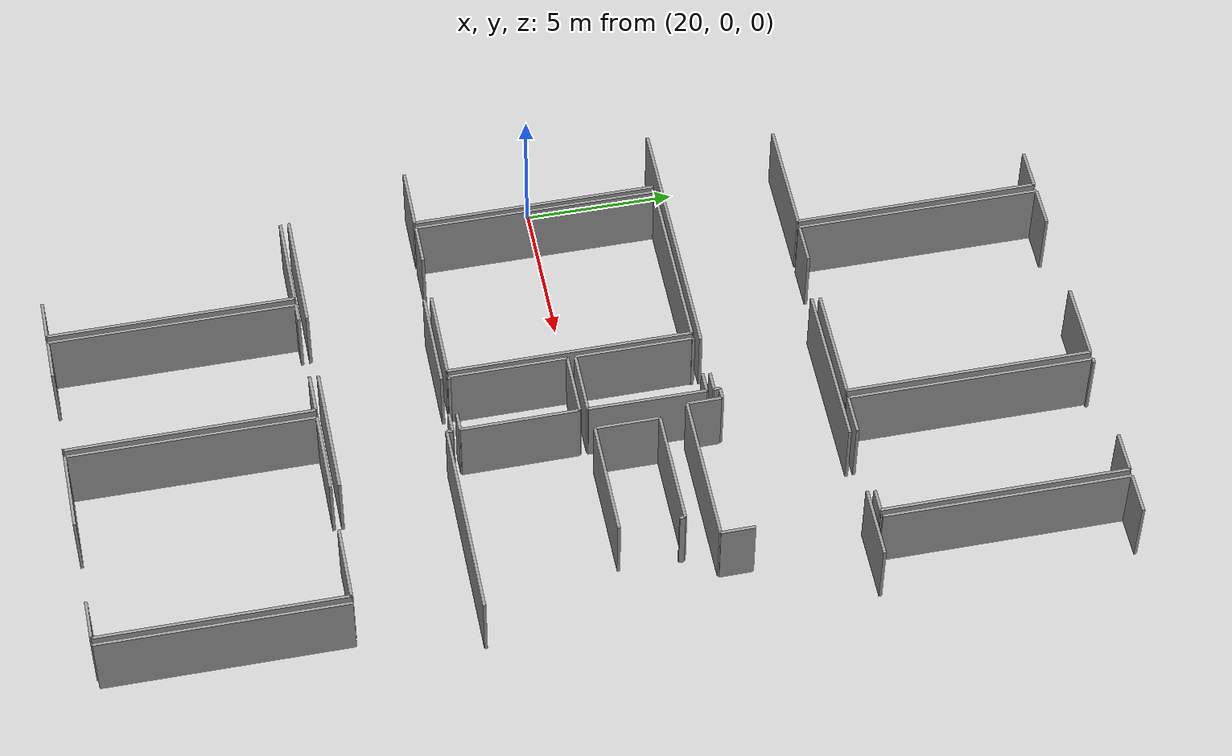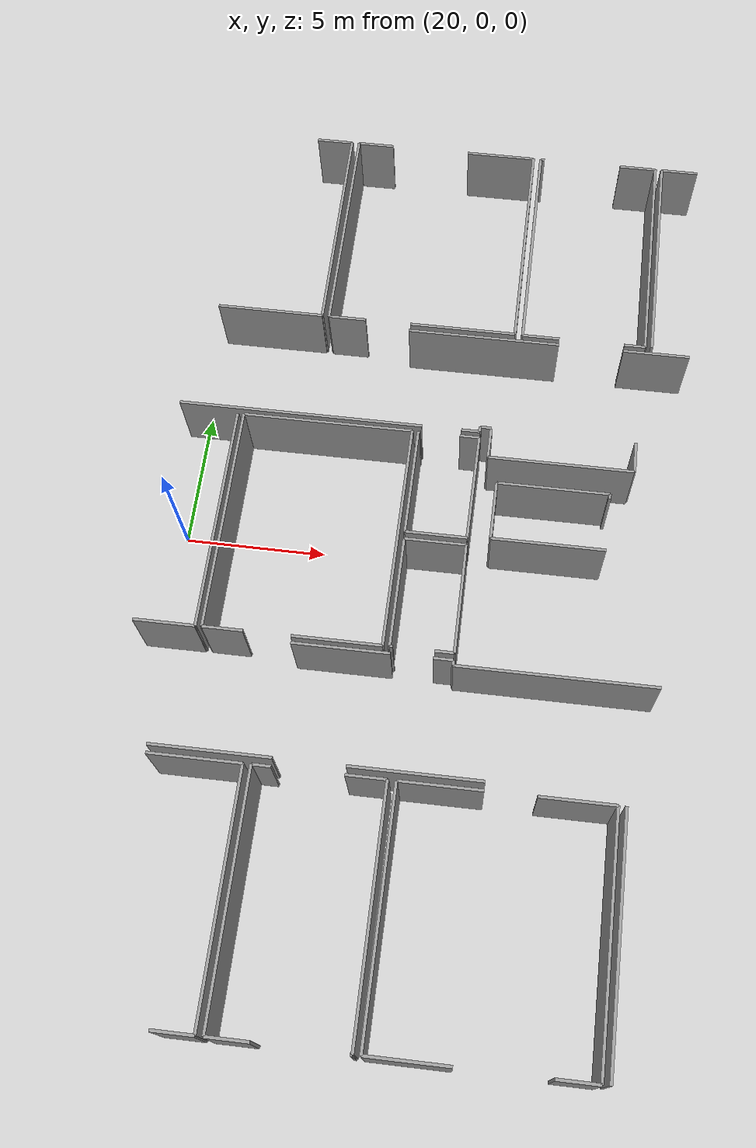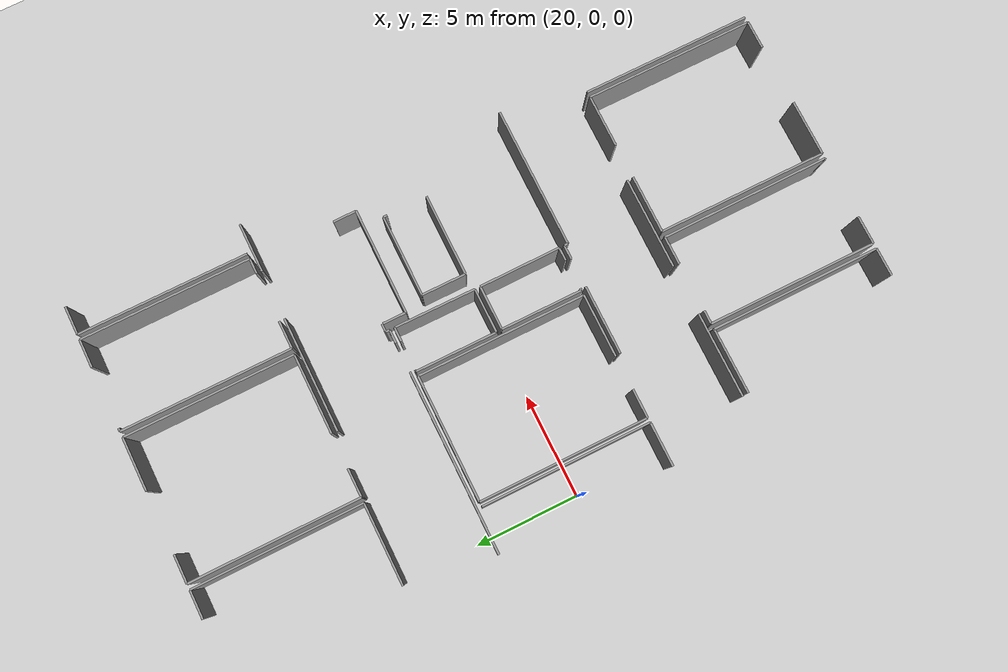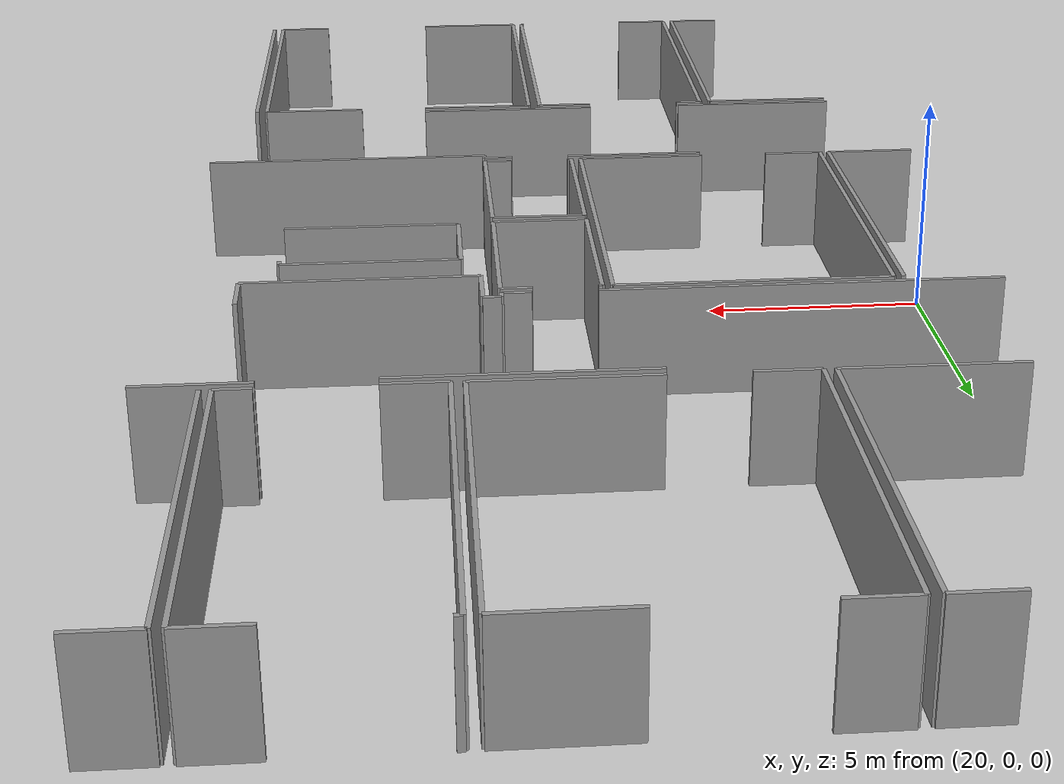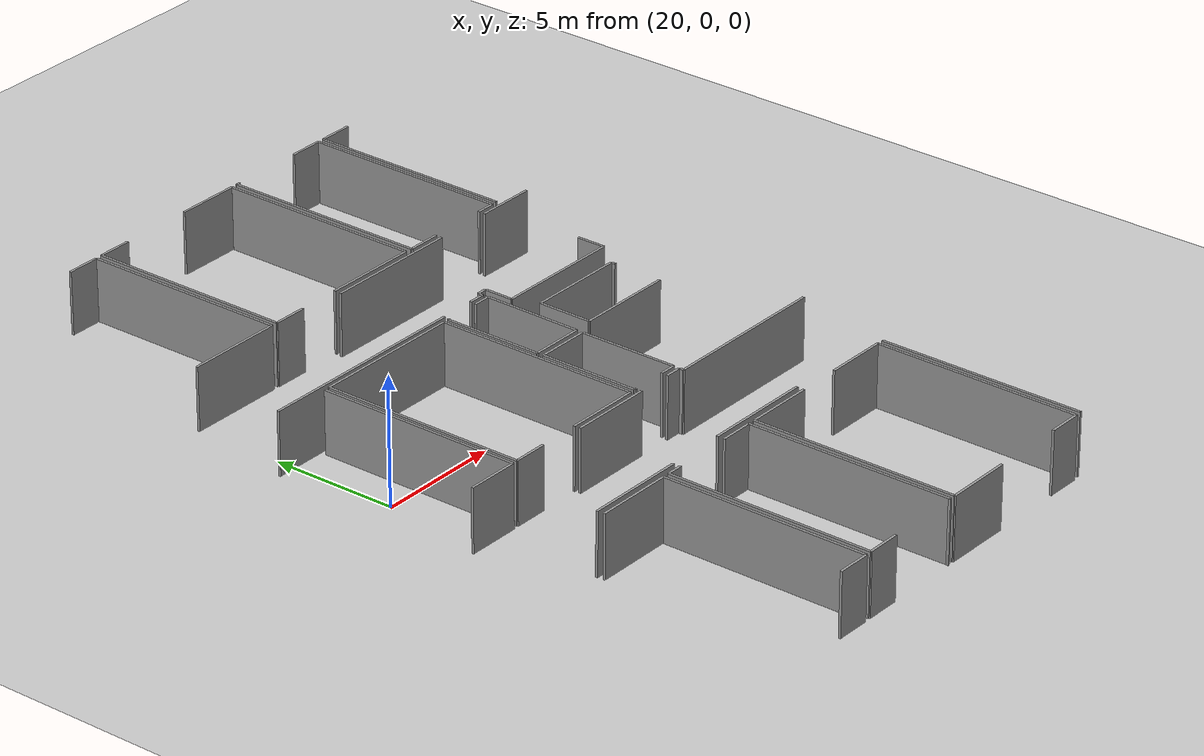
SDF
<sdf version="1.6">
 <world name="default">
  <model name="ground_plane">
   <static>1</static>
   <link name="link">
    <collision name="collision">
     <geometry><plane><normal>0 0 1</normal><size>100 100</size></plane></geometry>
     <surface><friction><ode><mu>100</mu><mu2>50</mu2></ode></friction></surface>
    </collision>
    <visual name="visual">
     <cast_shadows>0</cast_shadows>
     <geometry><plane><normal>0 0 1</normal><size>100 100</size></plane></geometry>
     <material>
      <script><uri>file://media/materials/scripts/gazebo.material</uri><name>Gazebo/Grey</name></script>
     </material>
    </visual>
   </link>
  </model>
  <model name="50041171">
   <static>1</static>
   <link name="Wall_90">
    <collision name="Wall_90_Collision">
     <geometry><box><size>4.45263952979 0.1 2.5</size></box></geometry>
     <pose>2.2263197649 0 1.25 0 0 0</pose>
    </collision>
    <visual name="Wall_90_Visual">
     <pose>2.2263197649 0 1.25 0 0 0</pose>
     <geometry><box><size>4.45263952979 0.1 2.5</size></box></geometry>
     <material>
      <script><uri>file://media/materials/scripts/gazebo.material</uri><name>Gazebo/Grey</name></script>
      <ambient>1 1 1 1</ambient>
     </material>
    </visual>
    <pose>97.2334604912 -25.0291024266 0 0 0 3.14159265359</pose>
   </link>
   <link name="Wall_91">
    <collision name="Wall_91_Collision">
     <geometry><box><size>4.07967146312 0.1 2.5</size></box></geometry>
     <pose>2.03983573156 0 1.25 0 0 0</pose>
    </collision>
    <visual name="Wall_91_Visual">
     <pose>2.03983573156 0 1.25 0 0 0</pose>
     <geometry><box><size>4.07967146312 0.1 2.5</size></box></geometry>
     <material>
      <script><uri>file://media/materials/scripts/gazebo.material</uri><name>Gazebo/Grey</name></script>
      <ambient>1 1 1 1</ambient>
     </material>
    </visual>
    <pose>90.3807752607 -25.0291024266 0 0 0 3.14159265359</pose>
   </link>
   <link name="Wall_118">
    <collision name="Wall_118_Collision">
     <geometry><box><size>3.34198683567 0.1 2.5</size></box></geometry>
     <pose>1.67099341784 0 1.25 0 0 0</pose>
    </collision>
    <visual name="Wall_118_Visual">
     <pose>1.67099341784 0 1.25 0 0 0</pose>
     <geometry><box><size>3.34198683567 0.1 2.5</size></box></geometry>
     <material>
      <script><uri>file://media/materials/scripts/gazebo.material</uri><name>Gazebo/Grey</name></script>
      <ambient>1 1 1 1</ambient>
     </material>
    </visual>
    <pose>90.3548782268 -21.0992275321 0 0 0 0.0</pose>
   </link>
   <link name="Wall_119">
    <collision name="Wall_119_Collision">
     <geometry><box><size>0.682209118549 0.1 2.5</size></box></geometry>
     <pose>0.341104559274 0 1.25 0 0 0</pose>
    </collision>
    <visual name="Wall_119_Visual">
     <pose>0.341104559274 0 1.25 0 0 0</pose>
     <geometry><box><size>0.682209118549 0.1 2.5</size></box></geometry>
     <material>
      <script><uri>file://media/materials/scripts/gazebo.material</uri><name>Gazebo/Grey</name></script>
      <ambient>1 1 1 1</ambient>
     </material>
    </visual>
    <pose>95.1092689801 -21.0992275321 0 0 0 0.0</pose>
   </link>
   <link name="Wall_120">
    <collision name="Wall_120_Collision">
     <geometry><box><size>0.185849302113 0.1 2.5</size></box></geometry>
     <pose>0.0929246510565 0 1.25 0 0 0</pose>
    </collision>
    <visual name="Wall_120_Visual">
     <pose>0.0929246510565 0 1.25 0 0 0</pose>
     <geometry><box><size>0.185849302113 0.1 2.5</size></box></geometry>
     <material>
      <script><uri>file://media/materials/scripts/gazebo.material</uri><name>Gazebo/Grey</name></script>
      <ambient>1 1 1 1</ambient>
     </material>
    </visual>
    <pose>95.7914780986 -21.0992275321 0 0 0 -1.57079632679</pose>
   </link>
   <link name="Wall_121">
    <collision name="Wall_121_Collision">
     <geometry><box><size>6.85395469289 0.1 2.5</size></box></geometry>
     <pose>3.42697734644 0 1.25 0 0 0</pose>
    </collision>
    <visual name="Wall_121_Visual">
     <pose>3.42697734644 0 1.25 0 0 0</pose>
     <geometry><box><size>6.85395469289 0.1 2.5</size></box></geometry>
     <material>
      <script><uri>file://media/materials/scripts/gazebo.material</uri><name>Gazebo/Grey</name></script>
      <ambient>1 1 1 1</ambient>
     </material>
    </visual>
    <pose>95.7914780986 -21.2850768342 0 0 0 0.0</pose>
   </link>
   <link name="Wall_179">
    <collision name="Wall_179_Collision">
     <geometry><box><size>5.54755088958 0.1 2.5</size></box></geometry>
     <pose>2.77377544479 0 1.25 0 0 0</pose>
    </collision>
    <visual name="Wall_179_Visual">
     <pose>2.77377544479 0 1.25 0 0 0</pose>
     <geometry><box><size>5.54755088958 0.1 2.5</size></box></geometry>
     <material>
      <script><uri>file://media/materials/scripts/gazebo.material</uri><name>Gazebo/Grey</name></script>
      <ambient>1 1 1 1</ambient>
     </material>
    </visual>
    <pose>92.7662221432 -8.49295765708 0 0 0 0.0</pose>
   </link>
   <link name="Wall_180">
    <collision name="Wall_180_Collision">
     <geometry><box><size>2.41743733616 0.1 2.5</size></box></geometry>
     <pose>1.20871866808 0 1.25 0 0 0</pose>
    </collision>
    <visual name="Wall_180_Visual">
     <pose>1.20871866808 0 1.25 0 0 0</pose>
     <geometry><box><size>2.41743733616 0.1 2.5</size></box></geometry>
     <material>
      <script><uri>file://media/materials/scripts/gazebo.material</uri><name>Gazebo/Grey</name></script>
      <ambient>1 1 1 1</ambient>
     </material>
    </visual>
    <pose>100.684494151 -8.49295765708 0 0 0 0.0</pose>
   </link>
   <link name="Wall_188">
    <collision name="Wall_188_Collision">
     <geometry><box><size>0.400642347998 0.1 2.5</size></box></geometry>
     <pose>0.200321173999 0 1.25 0 0 0</pose>
    </collision>
    <visual name="Wall_188_Visual">
     <pose>0.200321173999 0 1.25 0 0 0</pose>
     <geometry><box><size>0.400642347998 0.1 2.5</size></box></geometry>
     <material>
      <script><uri>file://media/materials/scripts/gazebo.material</uri><name>Gazebo/Grey</name></script>
      <ambient>1 1 1 1</ambient>
     </material>
    </visual>
    <pose>96.1852653494 -12.2558982399 0 0 0 3.14159265359</pose>
   </link>
   <link name="Wall_189">
    <collision name="Wall_189_Collision">
     <geometry><box><size>0.191561883121 0.1 2.5</size></box></geometry>
     <pose>0.0957809415603 0 1.25 0 0 0</pose>
    </collision>
    <visual name="Wall_189_Visual">
     <pose>0.0957809415603 0 1.25 0 0 0</pose>
     <geometry><box><size>0.191561883121 0.1 2.5</size></box></geometry>
     <material>
      <script><uri>file://media/materials/scripts/gazebo.material</uri><name>Gazebo/Grey</name></script>
      <ambient>1 1 1 1</ambient>
     </material>
    </visual>
    <pose>95.7846230014 -12.2558982399 0 0 0 -1.57079632679</pose>
   </link>
   <link name="Wall_190">
    <collision name="Wall_190_Collision">
     <geometry><box><size>0.651107288619 0.1 2.5</size></box></geometry>
     <pose>0.325553644309 0 1.25 0 0 0</pose>
    </collision>
    <visual name="Wall_190_Visual">
     <pose>0.325553644309 0 1.25 0 0 0</pose>
     <geometry><box><size>0.651107288619 0.1 2.5</size></box></geometry>
     <material>
      <script><uri>file://media/materials/scripts/gazebo.material</uri><name>Gazebo/Grey</name></script>
      <ambient>1 1 1 1</ambient>
     </material>
    </visual>
    <pose>95.7846230014 -12.447460123 0 0 0 3.14159265359</pose>
   </link>
   <link name="Wall_191">
    <collision name="Wall_191_Collision">
     <geometry><box><size>8.77249328772 0.1 2.5</size></box></geometry>
     <pose>4.38624664386 0 1.25 0 0 0</pose>
    </collision>
    <visual name="Wall_191_Visual">
     <pose>4.38624664386 0 1.25 0 0 0</pose>
     <geometry><box><size>8.77249328772 0.1 2.5</size></box></geometry>
     <material>
      <script><uri>file://media/materials/scripts/gazebo.material</uri><name>Gazebo/Grey</name></script>
      <ambient>1 1 1 1</ambient>
     </material>
    </visual>
    <pose>93.7145105905 -12.447460123 0 0 0 3.14159265359</pose>
   </link>
   <link name="Wall_205">
    <collision name="Wall_205_Collision">
     <geometry><box><size>3.88912514996 0.1 2.5</size></box></geometry>
     <pose>1.94456257498 0 1.25 0 0 0</pose>
    </collision>
    <visual name="Wall_205_Visual">
     <pose>1.94456257498 0 1.25 0 0 0</pose>
     <geometry><box><size>3.88912514996 0.1 2.5</size></box></geometry>
     <material>
      <script><uri>file://media/materials/scripts/gazebo.material</uri><name>Gazebo/Grey</name></script>
      <ambient>1 1 1 1</ambient>
     </material>
    </visual>
    <pose>89.4809802789 -8.20935974662 0 0 0 3.14159265359</pose>
   </link>
   <link name="Wall_209">
    <collision name="Wall_209_Collision">
     <geometry><box><size>1.35553199997 0.1 2.5</size></box></geometry>
     <pose>0.677765999987 0 1.25 0 0 0</pose>
    </collision>
    <visual name="Wall_209_Visual">
     <pose>0.677765999987 0 1.25 0 0 0</pose>
     <geometry><box><size>1.35553199997 0.1 2.5</size></box></geometry>
     <material>
      <script><uri>file://media/materials/scripts/gazebo.material</uri><name>Gazebo/Grey</name></script>
      <ambient>1 1 1 1</ambient>
     </material>
    </visual>
    <pose>88.0972662126 -0.0189149904473 0 0 0 0.0</pose>
   </link>
   <link name="Wall_210">
    <collision name="Wall_210_Collision">
     <geometry><box><size>8.19049324111 0.1 2.5</size></box></geometry>
     <pose>4.09524662056 0 1.25 0 0 0</pose>
    </collision>
    <visual name="Wall_210_Visual">
     <pose>4.09524662056 0 1.25 0 0 0</pose>
     <geometry><box><size>8.19049324111 0.1 2.5</size></box></geometry>
     <material>
      <script><uri>file://media/materials/scripts/gazebo.material</uri><name>Gazebo/Grey</name></script>
      <ambient>1 1 1 1</ambient>
     </material>
    </visual>
    <pose>89.4527982126 -0.0189149904473 0 0 0 -1.56735549349</pose>
   </link>
   <link name="Wall_211">
    <collision name="Wall_211_Collision">
     <geometry><box><size>3.87300297689 0.1 2.5</size></box></geometry>
     <pose>1.93650148844 0 1.25 0 0 0</pose>
    </collision>
    <visual name="Wall_211_Visual">
     <pose>1.93650148844 0 1.25 0 0 0</pose>
     <geometry><box><size>3.87300297689 0.1 2.5</size></box></geometry>
     <material>
      <script><uri>file://media/materials/scripts/gazebo.material</uri><name>Gazebo/Grey</name></script>
      <ambient>1 1 1 1</ambient>
     </material>
    </visual>
    <pose>96.6662646702 -8.21710346754 0 0 0 3.14159265359</pose>
   </link>
   <link name="Wall_212">
    <collision name="Wall_212_Collision">
     <geometry><box><size>1.37901705523 0.1 2.5</size></box></geometry>
     <pose>0.689508527614 0 1.25 0 0 0</pose>
    </collision>
    <visual name="Wall_212_Visual">
     <pose>0.689508527614 0 1.25 0 0 0</pose>
     <geometry><box><size>1.37901705523 0.1 2.5</size></box></geometry>
     <material>
      <script><uri>file://media/materials/scripts/gazebo.material</uri><name>Gazebo/Grey</name></script>
      <ambient>1 1 1 1</ambient>
     </material>
    </visual>
    <pose>91.1171904257 -8.21710346754 0 0 0 3.14159265359</pose>
   </link>
   <link name="Wall_213">
    <collision name="Wall_213_Collision">
     <geometry><box><size>8.20555135928 0.1 2.5</size></box></geometry>
     <pose>4.10277567964 0 1.25 0 0 0</pose>
    </collision>
    <visual name="Wall_213_Visual">
     <pose>4.10277567964 0 1.25 0 0 0</pose>
     <geometry><box><size>8.20555135928 0.1 2.5</size></box></geometry>
     <material>
      <script><uri>file://media/materials/scripts/gazebo.material</uri><name>Gazebo/Grey</name></script>
      <ambient>1 1 1 1</ambient>
     </material>
    </visual>
    <pose>89.7381733705 -8.21710346754 0 0 0 1.57079632679</pose>
   </link>
   <link name="Wall_214">
    <collision name="Wall_214_Collision">
     <geometry><box><size>1.36657632326 0.1 2.5</size></box></geometry>
     <pose>0.683288161628 0 1.25 0 0 0</pose>
    </collision>
    <visual name="Wall_214_Visual">
     <pose>0.683288161628 0 1.25 0 0 0</pose>
     <geometry><box><size>1.36657632326 0.1 2.5</size></box></geometry>
     <material>
      <script><uri>file://media/materials/scripts/gazebo.material</uri><name>Gazebo/Grey</name></script>
      <ambient>1 1 1 1</ambient>
     </material>
    </visual>
    <pose>89.7381733705 -0.0115521082598 0 0 0 0.0</pose>
   </link>
   <link name="Wall_215">
    <collision name="Wall_215_Collision">
     <geometry><box><size>2.58284829289 0.1 2.5</size></box></geometry>
     <pose>1.29142414645 0 1.25 0 0 0</pose>
    </collision>
    <visual name="Wall_215_Visual">
     <pose>1.29142414645 0 1.25 0 0 0</pose>
     <geometry><box><size>2.58284829289 0.1 2.5</size></box></geometry>
     <material>
      <script><uri>file://media/materials/scripts/gazebo.material</uri><name>Gazebo/Grey</name></script>
      <ambient>1 1 1 1</ambient>
     </material>
    </visual>
    <pose>94.0816391299 -0.0115521082598 0 0 0 0.0</pose>
   </link>
   <link name="Wall_216">
    <collision name="Wall_216_Collision">
     <geometry><box><size>8.20555155174 0.1 2.5</size></box></geometry>
     <pose>4.10277577587 0 1.25 0 0 0</pose>
    </collision>
    <visual name="Wall_216_Visual">
     <pose>4.10277577587 0 1.25 0 0 0</pose>
     <geometry><box><size>8.20555155174 0.1 2.5</size></box></geometry>
     <material>
      <script><uri>file://media/materials/scripts/gazebo.material</uri><name>Gazebo/Grey</name></script>
      <ambient>1 1 1 1</ambient>
     </material>
    </visual>
    <pose>96.6644874228 -0.0115521082598 0 0 0 -1.57057973594</pose>
   </link>
   <link name="Wall_217">
    <collision name="Wall_217_Collision">
     <geometry><box><size>0.764851123792 0.1 2.5</size></box></geometry>
     <pose>0.382425561896 0 1.25 0 0 0</pose>
    </collision>
    <visual name="Wall_217_Visual">
     <pose>0.382425561896 0 1.25 0 0 0</pose>
     <geometry><box><size>0.764851123792 0.1 2.5</size></box></geometry>
     <material>
      <script><uri>file://media/materials/scripts/gazebo.material</uri><name>Gazebo/Grey</name></script>
      <ambient>1 1 1 1</ambient>
     </material>
    </visual>
    <pose>101.470164459 -8.23817654414 0 0 0 3.14159265359</pose>
   </link>
   <link name="Wall_218">
    <collision name="Wall_218_Collision">
     <geometry><box><size>1.35781703238 0.1 2.5</size></box></geometry>
     <pose>0.678908516189 0 1.25 0 0 0</pose>
    </collision>
    <visual name="Wall_218_Visual">
     <pose>0.678908516189 0 1.25 0 0 0</pose>
     <geometry><box><size>1.35781703238 0.1 2.5</size></box></geometry>
     <material>
      <script><uri>file://media/materials/scripts/gazebo.material</uri><name>Gazebo/Grey</name></script>
      <ambient>1 1 1 1</ambient>
     </material>
    </visual>
    <pose>98.3111071617 -8.23817654414 0 0 0 3.14159265359</pose>
   </link>
   <link name="Wall_219">
    <collision name="Wall_219_Collision">
     <geometry><box><size>8.23195617816 0.1 2.5</size></box></geometry>
     <pose>4.11597808908 0 1.25 0 0 0</pose>
    </collision>
    <visual name="Wall_219_Visual">
     <pose>4.11597808908 0 1.25 0 0 0</pose>
     <geometry><box><size>8.23195617816 0.1 2.5</size></box></geometry>
     <material>
      <script><uri>file://media/materials/scripts/gazebo.material</uri><name>Gazebo/Grey</name></script>
      <ambient>1 1 1 1</ambient>
     </material>
    </visual>
    <pose>96.9532901293 -8.23817654414 0 0 0 1.57079632679</pose>
   </link>
   <link name="Wall_220">
    <collision name="Wall_220_Collision">
     <geometry><box><size>0.150685192355 0.1 2.5</size></box></geometry>
     <pose>0.0753425961776 0 1.25 0 0 0</pose>
    </collision>
    <visual name="Wall_220_Visual">
     <pose>0.0753425961776 0 1.25 0 0 0</pose>
     <geometry><box><size>0.150685192355 0.1 2.5</size></box></geometry>
     <material>
      <script><uri>file://media/materials/scripts/gazebo.material</uri><name>Gazebo/Grey</name></script>
      <ambient>1 1 1 1</ambient>
     </material>
    </visual>
    <pose>96.9532901293 -0.00622036598602 0 0 0 0.0</pose>
   </link>
   <link name="Wall_221">
    <collision name="Wall_221_Collision">
     <geometry><box><size>1.38219071134 0.1 2.5</size></box></geometry>
     <pose>0.691095355672 0 1.25 0 0 0</pose>
    </collision>
    <visual name="Wall_221_Visual">
     <pose>0.691095355672 0 1.25 0 0 0</pose>
     <geometry><box><size>1.38219071134 0.1 2.5</size></box></geometry>
     <material>
      <script><uri>file://media/materials/scripts/gazebo.material</uri><name>Gazebo/Grey</name></script>
      <ambient>1 1 1 1</ambient>
     </material>
    </visual>
    <pose>100.076675532 -0.00622036598602 0 0 0 0.0</pose>
   </link>
   <link name="Wall_222">
    <collision name="Wall_222_Collision">
     <geometry><box><size>8.23196393145 0.1 2.5</size></box></geometry>
     <pose>4.11598196573 0 1.25 0 0 0</pose>
    </collision>
    <visual name="Wall_222_Visual">
     <pose>4.11598196573 0 1.25 0 0 0</pose>
     <geometry><box><size>8.23196393145 0.1 2.5</size></box></geometry>
     <material>
      <script><uri>file://media/materials/scripts/gazebo.material</uri><name>Gazebo/Grey</name></script>
      <ambient>1 1 1 1</ambient>
     </material>
    </visual>
    <pose>101.458866243 -0.00622036598602 0 0 0 -1.56942384516</pose>
   </link>
   <link name="Wall_225">
    <collision name="Wall_225_Collision">
     <geometry><box><size>8.21596095134 0.1 2.5</size></box></geometry>
     <pose>4.10798047567 0 1.25 0 0 0</pose>
    </collision>
    <visual name="Wall_225_Visual">
     <pose>4.10798047567 0 1.25 0 0 0</pose>
     <geometry><box><size>8.21596095134 0.1 2.5</size></box></geometry>
     <material>
      <script><uri>file://media/materials/scripts/gazebo.material</uri><name>Gazebo/Grey</name></script>
      <ambient>1 1 1 1</ambient>
     </material>
    </visual>
    <pose>101.714155141 -8.22852862955 0 0 0 1.57079632679</pose>
   </link>
   <link name="Wall_226">
    <collision name="Wall_226_Collision">
     <geometry><box><size>1.38574520619 0.1 2.5</size></box></geometry>
     <pose>0.692872603096 0 1.25 0 0 0</pose>
    </collision>
    <visual name="Wall_226_Visual">
     <pose>0.692872603096 0 1.25 0 0 0</pose>
     <geometry><box><size>1.38574520619 0.1 2.5</size></box></geometry>
     <material>
      <script><uri>file://media/materials/scripts/gazebo.material</uri><name>Gazebo/Grey</name></script>
      <ambient>1 1 1 1</ambient>
     </material>
    </visual>
    <pose>101.714155141 -0.0125676782167 0 0 0 0.0</pose>
   </link>
   <link name="Wall_264">
    <collision name="Wall_264_Collision">
     <geometry><box><size>2.12127174748 0.1 2.5</size></box></geometry>
     <pose>1.06063587374 0 1.25 0 0 0</pose>
    </collision>
    <visual name="Wall_264_Visual">
     <pose>1.06063587374 0 1.25 0 0 0</pose>
     <geometry><box><size>2.12127174748 0.1 2.5</size></box></geometry>
     <material>
      <script><uri>file://media/materials/scripts/gazebo.material</uri><name>Gazebo/Grey</name></script>
      <ambient>1 1 1 1</ambient>
     </material>
    </visual>
    <pose>87.0908363853 -20.8703434531 0 0 0 3.14159265359</pose>
   </link>
   <link name="Wall_269">
    <collision name="Wall_269_Collision">
     <geometry><box><size>8.18079684158 0.1 2.5</size></box></geometry>
     <pose>4.09039842079 0 1.25 0 0 0</pose>
    </collision>
    <visual name="Wall_269_Visual">
     <pose>4.09039842079 0 1.25 0 0 0</pose>
     <geometry><box><size>8.18079684158 0.1 2.5</size></box></geometry>
     <material>
      <script><uri>file://media/materials/scripts/gazebo.material</uri><name>Gazebo/Grey</name></script>
      <ambient>1 1 1 1</ambient>
     </material>
    </visual>
    <pose>87.0908363853 -12.6895466115 0 0 0 -1.57079632679</pose>
   </link>
   <link name="Wall_270">
    <collision name="Wall_270_Collision">
     <geometry><box><size>3.07197217338 0.1 2.5</size></box></geometry>
     <pose>1.53598608669 0 1.25 0 0 0</pose>
    </collision>
    <visual name="Wall_270_Visual">
     <pose>1.53598608669 0 1.25 0 0 0</pose>
     <geometry><box><size>3.07197217338 0.1 2.5</size></box></geometry>
     <material>
      <script><uri>file://media/materials/scripts/gazebo.material</uri><name>Gazebo/Grey</name></script>
      <ambient>1 1 1 1</ambient>
     </material>
    </visual>
    <pose>93.3973988714 -20.8608224847 0 0 0 3.14159265359</pose>
   </link>
   <link name="Wall_271">
    <collision name="Wall_271_Collision">
     <geometry><box><size>1.39183862593 0.1 2.5</size></box></geometry>
     <pose>0.695919312967 0 1.25 0 0 0</pose>
    </collision>
    <visual name="Wall_271_Visual">
     <pose>0.695919312967 0 1.25 0 0 0</pose>
     <geometry><box><size>1.39183862593 0.1 2.5</size></box></geometry>
     <material>
      <script><uri>file://media/materials/scripts/gazebo.material</uri><name>Gazebo/Grey</name></script>
      <ambient>1 1 1 1</ambient>
     </material>
    </visual>
    <pose>88.7034345306 -20.8608224847 0 0 0 3.14159265359</pose>
   </link>
   <link name="Wall_272">
    <collision name="Wall_272_Collision">
     <geometry><box><size>8.17698845424 0.1 2.5</size></box></geometry>
     <pose>4.08849422712 0 1.25 0 0 0</pose>
    </collision>
    <visual name="Wall_272_Visual">
     <pose>4.08849422712 0 1.25 0 0 0</pose>
     <geometry><box><size>8.17698845424 0.1 2.5</size></box></geometry>
     <material>
      <script><uri>file://media/materials/scripts/gazebo.material</uri><name>Gazebo/Grey</name></script>
      <ambient>1 1 1 1</ambient>
     </material>
    </visual>
    <pose>87.3115959047 -20.8608224847 0 0 0 1.57079632679</pose>
   </link>
   <link name="Wall_273">
    <collision name="Wall_273_Collision">
     <geometry><box><size>6.08174068691 0.1 2.5</size></box></geometry>
     <pose>3.04087034345 0 1.25 0 0 0</pose>
    </collision>
    <visual name="Wall_273_Visual">
     <pose>3.04087034345 0 1.25 0 0 0</pose>
     <geometry><box><size>6.08174068691 0.1 2.5</size></box></geometry>
     <material>
      <script><uri>file://media/materials/scripts/gazebo.material</uri><name>Gazebo/Grey</name></script>
      <ambient>1 1 1 1</ambient>
     </material>
    </visual>
    <pose>87.3115959047 -12.6838340305 0 0 0 0.0</pose>
   </link>
   <link name="Wall_274">
    <collision name="Wall_274_Collision">
     <geometry><box><size>8.1769894633 0.1 2.5</size></box></geometry>
     <pose>4.08849473165 0 1.25 0 0 0</pose>
    </collision>
    <visual name="Wall_274_Visual">
     <pose>4.08849473165 0 1.25 0 0 0</pose>
     <geometry><box><size>8.1769894633 0.1 2.5</size></box></geometry>
     <material>
      <script><uri>file://media/materials/scripts/gazebo.material</uri><name>Gazebo/Grey</name></script>
      <ambient>1 1 1 1</ambient>
     </material>
    </visual>
    <pose>93.3933365916 -12.6838340305 0 0 0 -1.57029953271</pose>
   </link>
   <link name="Wall_275">
    <collision name="Wall_275_Collision">
     <geometry><box><size>2.15808615842 0.1 2.5</size></box></geometry>
     <pose>1.07904307921 0 1.25 0 0 0</pose>
    </collision>
    <visual name="Wall_275_Visual">
     <pose>1.07904307921 0 1.25 0 0 0</pose>
     <geometry><box><size>2.15808615842 0.1 2.5</size></box></geometry>
     <material>
      <script><uri>file://media/materials/scripts/gazebo.material</uri><name>Gazebo/Grey</name></script>
      <ambient>1 1 1 1</ambient>
     </material>
    </visual>
    <pose>95.7754828718 -16.6374478727 0 0 0 3.14159265359</pose>
   </link>
   <link name="Wall_276">
    <collision name="Wall_276_Collision">
     <geometry><box><size>3.94790126121 0.1 2.5</size></box></geometry>
     <pose>1.97395063061 0 1.25 0 0 0</pose>
    </collision>
    <visual name="Wall_276_Visual">
     <pose>1.97395063061 0 1.25 0 0 0</pose>
     <geometry><box><size>3.94790126121 0.1 2.5</size></box></geometry>
     <material>
      <script><uri>file://media/materials/scripts/gazebo.material</uri><name>Gazebo/Grey</name></script>
      <ambient>1 1 1 1</ambient>
     </material>
    </visual>
    <pose>93.6173967134 -16.6374478727 0 0 0 1.57079632679</pose>
   </link>
   <link name="Wall_277">
    <collision name="Wall_277_Collision">
     <geometry><box><size>0.0804839190845 0.1 2.5</size></box></geometry>
     <pose>0.0402419595422 0 1.25 0 0 0</pose>
    </collision>
    <visual name="Wall_277_Visual">
     <pose>0.0402419595422 0 1.25 0 0 0</pose>
     <geometry><box><size>0.0804839190845 0.1 2.5</size></box></geometry>
     <material>
      <script><uri>file://media/materials/scripts/gazebo.material</uri><name>Gazebo/Grey</name></script>
      <ambient>1 1 1 1</ambient>
     </material>
    </visual>
    <pose>93.6173967134 -12.6895466115 0 0 0 0.0</pose>
   </link>
   <link name="Wall_278">
    <collision name="Wall_278_Collision">
     <geometry><box><size>0.691222301916 0.1 2.5</size></box></geometry>
     <pose>0.345611150958 0 1.25 0 0 0</pose>
    </collision>
    <visual name="Wall_278_Visual">
     <pose>0.345611150958 0 1.25 0 0 0</pose>
     <geometry><box><size>0.691222301916 0.1 2.5</size></box></geometry>
     <material>
      <script><uri>file://media/materials/scripts/gazebo.material</uri><name>Gazebo/Grey</name></script>
      <ambient>1 1 1 1</ambient>
     </material>
    </visual>
    <pose>95.1059683777 -12.6895466115 0 0 0 0.0</pose>
   </link>
   <link name="Wall_279">
    <collision name="Wall_279_Collision">
     <geometry><box><size>3.9479609417 0.1 2.5</size></box></geometry>
     <pose>1.97398047085 0 1.25 0 0 0</pose>
    </collision>
    <visual name="Wall_279_Visual">
     <pose>1.97398047085 0 1.25 0 0 0</pose>
     <geometry><box><size>3.9479609417 0.1 2.5</size></box></geometry>
     <material>
      <script><uri>file://media/materials/scripts/gazebo.material</uri><name>Gazebo/Grey</name></script>
      <ambient>1 1 1 1</ambient>
     </material>
    </visual>
    <pose>95.7971906796 -12.6895466115 0 0 0 -1.57629484047</pose>
   </link>
   <link name="Wall_280">
    <collision name="Wall_280_Collision">
     <geometry><box><size>0.652757589799 0.1 2.5</size></box></geometry>
     <pose>0.326378794899 0 1.25 0 0 0</pose>
    </collision>
    <visual name="Wall_280_Visual">
     <pose>0.326378794899 0 1.25 0 0 0</pose>
     <geometry><box><size>0.652757589799 0.1 2.5</size></box></geometry>
     <material>
      <script><uri>file://media/materials/scripts/gazebo.material</uri><name>Gazebo/Grey</name></script>
      <ambient>1 1 1 1</ambient>
     </material>
    </visual>
    <pose>95.7971906796 -20.8511745701 0 0 0 3.14159265359</pose>
   </link>
   <link name="Wall_281">
    <collision name="Wall_281_Collision">
     <geometry><box><size>0.0991450170425 0.1 2.5</size></box></geometry>
     <pose>0.0495725085213 0 1.25 0 0 0</pose>
    </collision>
    <visual name="Wall_281_Visual">
     <pose>0.0495725085213 0 1.25 0 0 0</pose>
     <geometry><box><size>0.0991450170425 0.1 2.5</size></box></geometry>
     <material>
      <script><uri>file://media/materials/scripts/gazebo.material</uri><name>Gazebo/Grey</name></script>
      <ambient>1 1 1 1</ambient>
     </material>
    </visual>
    <pose>93.7297441398 -20.8511745701 0 0 0 3.14159265359</pose>
   </link>
   <link name="Wall_282">
    <collision name="Wall_282_Collision">
     <geometry><box><size>3.95005934737 0.1 2.5</size></box></geometry>
     <pose>1.97502967368 0 1.25 0 0 0</pose>
    </collision>
    <visual name="Wall_282_Visual">
     <pose>1.97502967368 0 1.25 0 0 0</pose>
     <geometry><box><size>3.95005934737 0.1 2.5</size></box></geometry>
     <material>
      <script><uri>file://media/materials/scripts/gazebo.material</uri><name>Gazebo/Grey</name></script>
      <ambient>1 1 1 1</ambient>
     </material>
    </visual>
    <pose>93.6305991228 -20.8511745701 0 0 0 1.57079632679</pose>
   </link>
   <link name="Wall_283">
    <collision name="Wall_283_Collision">
     <geometry><box><size>2.14640710391 0.1 2.5</size></box></geometry>
     <pose>1.07320355196 0 1.25 0 0 0</pose>
    </collision>
    <visual name="Wall_283_Visual">
     <pose>1.07320355196 0 1.25 0 0 0</pose>
     <geometry><box><size>2.14640710391 0.1 2.5</size></box></geometry>
     <material>
      <script><uri>file://media/materials/scripts/gazebo.material</uri><name>Gazebo/Grey</name></script>
      <ambient>1 1 1 1</ambient>
     </material>
    </visual>
    <pose>93.6305991228 -16.9011152228 0 0 0 0.0</pose>
   </link>
   <link name="Wall_284">
    <collision name="Wall_284_Collision">
     <geometry><box><size>3.95011091741 0.1 2.5</size></box></geometry>
     <pose>1.97505545871 0 1.25 0 0 0</pose>
    </collision>
    <visual name="Wall_284_Visual">
     <pose>1.97505545871 0 1.25 0 0 0</pose>
     <geometry><box><size>3.95011091741 0.1 2.5</size></box></geometry>
     <material>
      <script><uri>file://media/materials/scripts/gazebo.material</uri><name>Gazebo/Grey</name></script>
      <ambient>1 1 1 1</ambient>
     </material>
    </visual>
    <pose>95.7770062267 -16.9011152228 0 0 0 -1.56568645997</pose>
   </link>
   <link name="Wall_285">
    <collision name="Wall_285_Collision">
     <geometry><box><size>5.17382114544 0.1 2.5</size></box></geometry>
     <pose>2.58691057272 0 1.25 0 0 0</pose>
    </collision>
    <visual name="Wall_285_Visual">
     <pose>2.58691057272 0 1.25 0 0 0</pose>
     <geometry><box><size>5.17382114544 0.1 2.5</size></box></geometry>
     <material>
      <script><uri>file://media/materials/scripts/gazebo.material</uri><name>Gazebo/Grey</name></script>
      <ambient>1 1 1 1</ambient>
     </material>
    </visual>
    <pose>101.354897269 -13.4311665725 0 0 0 3.14159265359</pose>
   </link>
   <link name="Wall_286">
    <collision name="Wall_286_Collision">
     <geometry><box><size>1.14226230903 0.1 2.5</size></box></geometry>
     <pose>0.571131154513 0 1.25 0 0 0</pose>
    </collision>
    <visual name="Wall_286_Visual">
     <pose>0.571131154513 0 1.25 0 0 0</pose>
     <geometry><box><size>1.14226230903 0.1 2.5</size></box></geometry>
     <material>
      <script><uri>file://media/materials/scripts/gazebo.material</uri><name>Gazebo/Grey</name></script>
      <ambient>1 1 1 1</ambient>
     </material>
    </visual>
    <pose>96.1810761233 -13.4311665725 0 0 0 1.57079632679</pose>
   </link>
   <link name="Wall_287">
    <collision name="Wall_287_Collision">
     <geometry><box><size>1.14230198786 0.1 2.5</size></box></geometry>
     <pose>0.571150993928 0 1.25 0 0 0</pose>
    </collision>
    <visual name="Wall_287_Visual">
     <pose>0.571150993928 0 1.25 0 0 0</pose>
     <geometry><box><size>1.14230198786 0.1 2.5</size></box></geometry>
     <material>
      <script><uri>file://media/materials/scripts/gazebo.material</uri><name>Gazebo/Grey</name></script>
      <ambient>1 1 1 1</ambient>
     </material>
    </visual>
    <pose>101.3453763 -12.2889042635 0 0 0 -1.56246133422</pose>
   </link>
   <link name="Wall_295">
    <collision name="Wall_295_Collision">
     <geometry><box><size>3.97392524136 0.1 2.5</size></box></geometry>
     <pose>1.98696262068 0 1.25 0 0 0</pose>
    </collision>
    <visual name="Wall_295_Visual">
     <pose>1.98696262068 0 1.25 0 0 0</pose>
     <geometry><box><size>3.97392524136 0.1 2.5</size></box></geometry>
     <material>
      <script><uri>file://media/materials/scripts/gazebo.material</uri><name>Gazebo/Grey</name></script>
      <ambient>1 1 1 1</ambient>
     </material>
    </visual>
    <pose>100.551962272 -14.4097951722 0 0 0 3.14159265359</pose>
   </link>
   <link name="Wall_296">
    <collision name="Wall_296_Collision">
     <geometry><box><size>2.1526274699 0.1 2.5</size></box></geometry>
     <pose>1.07631373495 0 1.25 0 0 0</pose>
    </collision>
    <visual name="Wall_296_Visual">
     <pose>1.07631373495 0 1.25 0 0 0</pose>
     <geometry><box><size>2.1526274699 0.1 2.5</size></box></geometry>
     <material>
      <script><uri>file://media/materials/scripts/gazebo.material</uri><name>Gazebo/Grey</name></script>
      <ambient>1 1 1 1</ambient>
     </material>
    </visual>
    <pose>96.5780370302 -14.4097951722 0 0 0 -1.57079632679</pose>
   </link>
   <link name="Wall_297">
    <collision name="Wall_297_Collision">
     <geometry><box><size>3.97392524136 0.1 2.5</size></box></geometry>
     <pose>1.98696262068 0 1.25 0 0 0</pose>
    </collision>
    <visual name="Wall_297_Visual">
     <pose>1.98696262068 0 1.25 0 0 0</pose>
     <geometry><box><size>3.97392524136 0.1 2.5</size></box></geometry>
     <material>
      <script><uri>file://media/materials/scripts/gazebo.material</uri><name>Gazebo/Grey</name></script>
      <ambient>1 1 1 1</ambient>
     </material>
    </visual>
    <pose>96.5780370302 -16.5624226421 0 0 0 0.0</pose>
   </link>
   <link name="Wall_298">
    <collision name="Wall_298_Collision">
     <geometry><box><size>0.183183430976 0.1 2.5</size></box></geometry>
     <pose>0.0915917154881 0 1.25 0 0 0</pose>
    </collision>
    <visual name="Wall_298_Visual">
     <pose>0.0915917154881 0 1.25 0 0 0</pose>
     <geometry><box><size>0.183183430976 0.1 2.5</size></box></geometry>
     <material>
      <script><uri>file://media/materials/scripts/gazebo.material</uri><name>Gazebo/Grey</name></script>
      <ambient>1 1 1 1</ambient>
     </material>
    </visual>
    <pose>100.551962272 -14.5929786032 0 0 0 1.57079632679</pose>
   </link>
   <link name="Wall_380">
    <collision name="Wall_380_Collision">
     <geometry><box><size>1.3689883019 0.1 2.5</size></box></geometry>
     <pose>0.684494150952 0 1.25 0 0 0</pose>
    </collision>
    <visual name="Wall_380_Visual">
     <pose>0.684494150952 0 1.25 0 0 0</pose>
     <geometry><box><size>1.3689883019 0.1 2.5</size></box></geometry>
     <material>
      <script><uri>file://media/materials/scripts/gazebo.material</uri><name>Gazebo/Grey</name></script>
      <ambient>1 1 1 1</ambient>
     </material>
    </visual>
    <pose>89.4911359785 -33.5511307737 0 0 0 3.14159265359</pose>
   </link>
   <link name="Wall_384">
    <collision name="Wall_384_Collision">
     <geometry><box><size>3.15715310352 0.1 2.5</size></box></geometry>
     <pose>1.57857655176 0 1.25 0 0 0</pose>
    </collision>
    <visual name="Wall_384_Visual">
     <pose>1.57857655176 0 1.25 0 0 0</pose>
     <geometry><box><size>3.15715310352 0.1 2.5</size></box></geometry>
     <material>
      <script><uri>file://media/materials/scripts/gazebo.material</uri><name>Gazebo/Grey</name></script>
      <ambient>1 1 1 1</ambient>
     </material>
    </visual>
    <pose>86.3229385517 -25.3152392619 0 0 0 0.0</pose>
   </link>
   <link name="Wall_385">
    <collision name="Wall_385_Collision">
     <geometry><box><size>8.23589891695 0.1 2.5</size></box></geometry>
     <pose>4.11794945847 0 1.25 0 0 0</pose>
    </collision>
    <visual name="Wall_385_Visual">
     <pose>4.11794945847 0 1.25 0 0 0</pose>
     <geometry><box><size>8.23589891695 0.1 2.5</size></box></geometry>
     <material>
      <script><uri>file://media/materials/scripts/gazebo.material</uri><name>Gazebo/Grey</name></script>
      <ambient>1 1 1 1</ambient>
     </material>
    </visual>
    <pose>89.4800916552 -25.3152392619 0 0 0 -1.56945532848</pose>
   </link>
   <link name="Wall_386">
    <collision name="Wall_386_Collision">
     <geometry><box><size>0.0652503697309 0.1 2.5</size></box></geometry>
     <pose>0.0326251848655 0 1.25 0 0 0</pose>
    </collision>
    <visual name="Wall_386_Visual">
     <pose>0.0326251848655 0 1.25 0 0 0</pose>
     <geometry><box><size>0.0652503697309 0.1 2.5</size></box></geometry>
     <material>
      <script><uri>file://media/materials/scripts/gazebo.material</uri><name>Gazebo/Grey</name></script>
      <ambient>1 1 1 1</ambient>
     </material>
    </visual>
    <pose>94.1729134798 -33.5441487302 0 0 0 3.14159265359</pose>
   </link>
   <link name="Wall_387">
    <collision name="Wall_387_Collision">
     <geometry><box><size>1.37914400147 0.1 2.5</size></box></geometry>
     <pose>0.689572000736 0 1.25 0 0 0</pose>
    </collision>
    <visual name="Wall_387_Visual">
     <pose>0.689572000736 0 1.25 0 0 0</pose>
     <geometry><box><size>1.37914400147 0.1 2.5</size></box></geometry>
     <material>
      <script><uri>file://media/materials/scripts/gazebo.material</uri><name>Gazebo/Grey</name></script>
      <ambient>1 1 1 1</ambient>
     </material>
    </visual>
    <pose>91.1317892438 -33.5441487302 0 0 0 3.14159265359</pose>
   </link>
   <link name="Wall_388">
    <collision name="Wall_388_Collision">
     <geometry><box><size>8.22890946829 0.1 2.5</size></box></geometry>
     <pose>4.11445473414 0 1.25 0 0 0</pose>
    </collision>
    <visual name="Wall_388_Visual">
     <pose>4.11445473414 0 1.25 0 0 0</pose>
     <geometry><box><size>8.22890946829 0.1 2.5</size></box></geometry>
     <material>
      <script><uri>file://media/materials/scripts/gazebo.material</uri><name>Gazebo/Grey</name></script>
      <ambient>1 1 1 1</ambient>
     </material>
    </visual>
    <pose>89.7526452424 -33.5441487302 0 0 0 1.57079632679</pose>
   </link>
   <link name="Wall_389">
    <collision name="Wall_389_Collision">
     <geometry><box><size>0.648568363726 0.1 2.5</size></box></geometry>
     <pose>0.324284181863 0 1.25 0 0 0</pose>
    </collision>
    <visual name="Wall_389_Visual">
     <pose>0.324284181863 0 1.25 0 0 0</pose>
     <geometry><box><size>0.648568363726 0.1 2.5</size></box></geometry>
     <material>
      <script><uri>file://media/materials/scripts/gazebo.material</uri><name>Gazebo/Grey</name></script>
      <ambient>1 1 1 1</ambient>
     </material>
    </visual>
    <pose>89.7526452424 -25.3152392619 0 0 0 0.0</pose>
   </link>
   <link name="Wall_390">
    <collision name="Wall_390_Collision">
     <geometry><box><size>1.36454518334 0.1 2.5</size></box></geometry>
     <pose>0.682272591671 0 1.25 0 0 0</pose>
    </collision>
    <visual name="Wall_390_Visual">
     <pose>0.682272591671 0 1.25 0 0 0</pose>
     <geometry><box><size>1.36454518334 0.1 2.5</size></box></geometry>
     <material>
      <script><uri>file://media/materials/scripts/gazebo.material</uri><name>Gazebo/Grey</name></script>
      <ambient>1 1 1 1</ambient>
     </material>
    </visual>
    <pose>92.7720616705 -25.3152392619 0 0 0 0.0</pose>
   </link>
   <link name="Wall_391">
    <collision name="Wall_391_Collision">
     <geometry><box><size>8.22898956181 0.1 2.5</size></box></geometry>
     <pose>4.1144947809 0 1.25 0 0 0</pose>
    </collision>
    <visual name="Wall_391_Visual">
     <pose>4.1144947809 0 1.25 0 0 0</pose>
     <geometry><box><size>8.22898956181 0.1 2.5</size></box></geometry>
     <material>
      <script><uri>file://media/materials/scripts/gazebo.material</uri><name>Gazebo/Grey</name></script>
      <ambient>1 1 1 1</ambient>
     </material>
    </visual>
    <pose>94.1366068538 -25.3152392619 0 0 0 -1.56638427311</pose>
   </link>
   <link name="Wall_392">
    <collision name="Wall_392_Collision">
     <geometry><box><size>1.37685896907 0.1 2.5</size></box></geometry>
     <pose>0.688429484535 0 1.25 0 0 0</pose>
    </collision>
    <visual name="Wall_392_Visual">
     <pose>0.688429484535 0 1.25 0 0 0</pose>
     <geometry><box><size>1.37685896907 0.1 2.5</size></box></geometry>
     <material>
      <script><uri>file://media/materials/scripts/gazebo.material</uri><name>Gazebo/Grey</name></script>
      <ambient>1 1 1 1</ambient>
     </material>
    </visual>
    <pose>101.479685427 -33.5409750741 0 0 0 3.14159265359</pose>
   </link>
   <link name="Wall_393">
    <collision name="Wall_393_Collision">
     <geometry><box><size>2.70001967667 0.1 2.5</size></box></geometry>
     <pose>1.35000983833 0 1.25 0 0 0</pose>
    </collision>
    <visual name="Wall_393_Visual">
     <pose>1.35000983833 0 1.25 0 0 0</pose>
     <geometry><box><size>2.70001967667 0.1 2.5</size></box></geometry>
     <material>
      <script><uri>file://media/materials/scripts/gazebo.material</uri><name>Gazebo/Grey</name></script>
      <ambient>1 1 1 1</ambient>
     </material>
    </visual>
    <pose>97.1269525919 -33.5409750741 0 0 0 3.14159265359</pose>
   </link>
   <link name="Wall_394">
    <collision name="Wall_394_Collision">
     <geometry><box><size>8.21938849994 0.1 2.5</size></box></geometry>
     <pose>4.10969424997 0 1.25 0 0 0</pose>
    </collision>
    <visual name="Wall_394_Visual">
     <pose>4.10969424997 0 1.25 0 0 0</pose>
     <geometry><box><size>8.21938849994 0.1 2.5</size></box></geometry>
     <material>
      <script><uri>file://media/materials/scripts/gazebo.material</uri><name>Gazebo/Grey</name></script>
      <ambient>1 1 1 1</ambient>
     </material>
    </visual>
    <pose>94.4269329153 -33.5409750741 0 0 0 1.57079632679</pose>
   </link>
   <link name="Wall_395">
    <collision name="Wall_395_Collision">
     <geometry><box><size>2.80322697354 0.1 2.5</size></box></geometry>
     <pose>1.40161348677 0 1.25 0 0 0</pose>
    </collision>
    <visual name="Wall_395_Visual">
     <pose>1.40161348677 0 1.25 0 0 0</pose>
     <geometry><box><size>2.80322697354 0.1 2.5</size></box></geometry>
     <material>
      <script><uri>file://media/materials/scripts/gazebo.material</uri><name>Gazebo/Grey</name></script>
      <ambient>1 1 1 1</ambient>
     </material>
    </visual>
    <pose>94.4269329153 -25.3215865742 0 0 0 0.0</pose>
   </link>
   <link name="Wall_396">
    <collision name="Wall_396_Collision">
     <geometry><box><size>2.5518734092 0.1 2.5</size></box></geometry>
     <pose>1.2759367046 0 1.25 0 0 0</pose>
    </collision>
    <visual name="Wall_396_Visual">
     <pose>1.2759367046 0 1.25 0 0 0</pose>
     <geometry><box><size>2.5518734092 0.1 2.5</size></box></geometry>
     <material>
      <script><uri>file://media/materials/scripts/gazebo.material</uri><name>Gazebo/Grey</name></script>
      <ambient>1 1 1 1</ambient>
     </material>
    </visual>
    <pose>98.9261617168 -25.3215865742 0 0 0 0.0</pose>
   </link>
   <link name="Wall_397">
    <collision name="Wall_397_Collision">
     <geometry><box><size>8.21938866561 0.1 2.5</size></box></geometry>
     <pose>4.10969433281 0 1.25 0 0 0</pose>
    </collision>
    <visual name="Wall_397_Visual">
     <pose>4.10969433281 0 1.25 0 0 0</pose>
     <geometry><box><size>8.21938866561 0.1 2.5</size></box></geometry>
     <material>
      <script><uri>file://media/materials/scripts/gazebo.material</uri><name>Gazebo/Grey</name></script>
      <ambient>1 1 1 1</ambient>
     </material>
    </visual>
    <pose>101.478035126 -25.3215865742 0 0 0 -1.57059554529</pose>
   </link>
   <link name="Wall_400">
    <collision name="Wall_400_Collision">
     <geometry><box><size>8.22776695208 0.1 2.5</size></box></geometry>
     <pose>4.11388347604 0 1.25 0 0 0</pose>
    </collision>
    <visual name="Wall_400_Visual">
     <pose>4.11388347604 0 1.25 0 0 0</pose>
     <geometry><box><size>8.22776695208 0.1 2.5</size></box></geometry>
     <material>
      <script><uri>file://media/materials/scripts/gazebo.material</uri><name>Gazebo/Grey</name></script>
      <ambient>1 1 1 1</ambient>
     </material>
    </visual>
    <pose>101.742844992 -33.5400864504 0 0 0 1.57079632679</pose>
   </link>
   <pose>-65.65 16.7602709033 0 0 0 0</pose>
  </model>
 </world>
</sdf>
